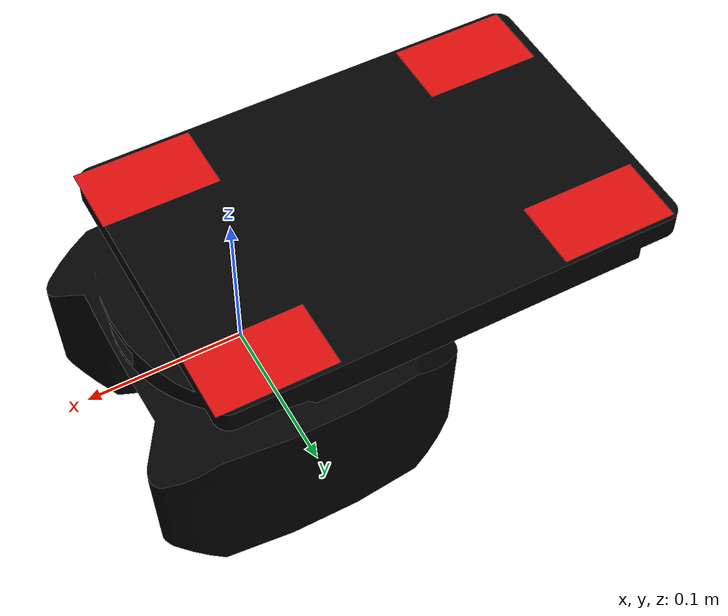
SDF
<?xml version="1.0"?>
<sdf version="1.9">
  <model name="room315_shuttle_R1">
    <static>false</static>
    <link name="room315_shuttle_link">
      <kinematic>true</kinematic>
      <gravity>false</gravity>
      <pose>0 0 0 0 0 0</pose>
      <inertial><mass>0.1</mass><inertia><ixx>0.001</ixx><ixy>0</ixy><ixz>0</ixz><iyy>0.001</iyy><iyz>0</iyz><izz>0.001</izz></inertia></inertial>
      <visual name="room315_shuttle_visual">
        <pose>-0.25 -0.100000024 -0.078499973 0 0 0</pose>
        <geometry><mesh><uri>model://room315_shuttle/meshes/shuttle.STL</uri></mesh></geometry>
        <material><ambient>0.01 0.01 0.01 1</ambient><diffuse>0.01 0.01 0.01 1</diffuse><specular>0.20 0.20 0.20 1</specular></material>
      </visual>
      <visual name="identity_region_front_left_label_R1_tag_101">
        <pose>0.02 0.075 0.0790 0 0 0</pose>
        <geometry><plane><normal>0 0 1</normal><size>0.075 0.045</size></plane></geometry>
        <material><ambient>0.85 0.05 0.05 1</ambient><diffuse>0.85 0.05 0.05 1</diffuse><specular>0.10 0.10 0.10 1</specular></material>
      </visual>
      <visual name="identity_region_front_right_label_R1_tag_102">
        <pose>0.02 -0.075 0.0790 0 0 0</pose>
        <geometry><plane><normal>0 0 1</normal><size>0.075 0.045</size></plane></geometry>
        <material><ambient>0.85 0.05 0.05 1</ambient><diffuse>0.85 0.05 0.05 1</diffuse><specular>0.10 0.10 0.10 1</specular></material>
      </visual>
      <visual name="identity_region_rear_left_label_R1_tag_103">
        <pose>-0.2 0.075 0.0790 0 0 3.14159</pose>
        <geometry><plane><normal>0 0 1</normal><size>0.075 0.045</size></plane></geometry>
        <material><ambient>0.85 0.05 0.05 1</ambient><diffuse>0.85 0.05 0.05 1</diffuse><specular>0.10 0.10 0.10 1</specular></material>
      </visual>
      <visual name="identity_region_rear_right_label_R1_tag_104">
        <pose>-0.2 -0.075 0.0790 0 0 3.14159</pose>
        <geometry><plane><normal>0 0 1</normal><size>0.075 0.045</size></plane></geometry>
        <material><ambient>0.85 0.05 0.05 1</ambient><diffuse>0.85 0.05 0.05 1</diffuse><specular>0.10 0.10 0.10 1</specular></material>
      </visual>
      <collision name="room315_shuttle_robot_collision">
        <pose>-0.078417048 0 0 0 0 0</pose>
        <geometry><box><size>0.36 0.22 0.17</size></box></geometry>
        <surface><contact><collide_bitmask>0x0000</collide_bitmask></contact></surface>
      </collision>
    </link>
    <plugin filename="gz-sim-pose-publisher-system" name="gz::sim::systems::PosePublisher"><publish_model_pose>true</publish_model_pose><publish_link_pose>true</publish_link_pose><publish_collision_pose>false</publish_collision_pose><publish_visual_pose>false</publish_visual_pose><publish_nested_model_pose>false</publish_nested_model_pose><update_frequency>30</update_frequency></plugin>
  </model>
</sdf>
